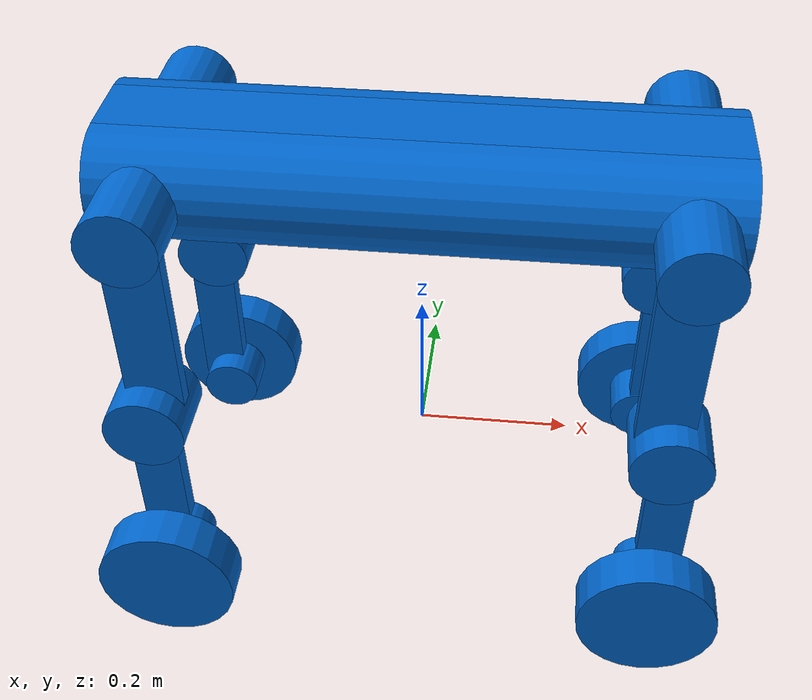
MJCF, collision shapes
<mujoco model="M20">

    <option cone="elliptic" impratio="100" />

    <default>
        <default class="robot">
            <default class="motor">
                <joint damping="0.1" armature="0.01" frictionloss="0.2"/>
                <motor/>
            </default>
            <default class="visual">
                <geom material="default_material" contype="0" conaffinity="0" group="2"/>
            </default>
            <default class="collision">
                <geom material="collision_material" condim="3" contype="1" conaffinity="1" solref="0.005 1"
                      friction="1 0.01 0.001" density="0" group="3"/>
            </default>
        </default>
    </default>

    <compiler angle="radian" meshdir="../../../../model/assets/"/>
    <compiler autolimits="true"/>

    <asset>
        <material name="default_material" rgba="0.7 0.7 0.7 1"/>
        <material name="collision_material" rgba="0.0 0.4 0.8 0.2"/>
        <mesh name="base_link" file="base_link.STL"/>
        <mesh name="fl_hipx" file="fl_hipx.STL"/>
        <mesh name="fl_hipy" file="fl_hipy.STL"/>
        <mesh name="fl_knee" file="fl_knee.STL"/>
        <mesh name="fl_wheel" file="fl_wheel.STL"/>
        <mesh name="fr_hipx" file="fr_hipx.STL"/>
        <mesh name="fr_hipy" file="fr_hipy.STL"/>
        <mesh name="fr_knee" file="fr_knee.STL"/>
        <mesh name="fr_wheel" file="fr_wheel.STL"/>
        <mesh name="hl_hipx" file="hl_hipx.STL"/>
        <mesh name="hl_hipy" file="hl_hipy.STL"/>
        <mesh name="hl_knee" file="hl_knee.STL"/>
        <mesh name="hl_wheel" file="hl_wheel.STL"/>
        <mesh name="hr_hipx" file="hr_hipx.STL"/>
        <mesh name="hr_hipy" file="hr_hipy.STL"/>
        <mesh name="hr_knee" file="hr_knee.STL"/>
        <mesh name="hr_wheel" file="hr_wheel.STL"/>
    </asset>

    <worldbody>
        <body name="base_link" pos="0 0 0.4" quat="1 0 0 0" childclass="robot">
            <freejoint name="floating_base"/>
            <inertial pos="0.00355105878308153 0.0016507579200937 -0.00346462146571654"
                      quat="1 0 0 0"
                      mass="15.882" diaginertia="0.087919 0.533522 0.563492"/>

            <site name="imu" pos="0.0632 -0.0268 -0.0435" size="0.005" rgba="1 0 0 1"/>
            <site name="base_site" pos="0 0 0" quat="1 0 0 0"/>

            <!-- CA9B sensor frames. Translations are converted from millimeters to meters. -->
            <site name="front_camera" pos="0.37646 0 0.03738" size="0.005" rgba="0 1 0 1"/>
            <site name="rear_camera" pos="-0.37646 0 0.03738" size="0.005" rgba="0 1 0 1"/>
            <site name="front_lidar" pos="0.32028 0 -0.013" size="0.005" rgba="0 0 1 1"/>
            <site name="rear_lidar" pos="-0.32028 0 -0.013" size="0.005" rgba="0 0 1 1"/>

            <geom type="mesh" mesh="base_link" class="visual"/>
            <geom name="base_link_collision" size="0.375 0.045 0.07" type="box" class="collision"/>
            <geom name="base_link_collision_2" size="0.07 0.375" pos="0 0.045 0" quat="0.707107 0 0.707107 0" type="cylinder" class="collision"/>
            <geom name="base_link_collision_3" size="0.07 0.375" pos="0 -0.045 0" quat="0.707107 0 0.707107 0" type="cylinder" class="collision"/>

            <body name="fl_hipx" pos="0.3141 0.0685 0">
                <inertial pos="-0.0111893 0.00891693 0.000405666" quat="0.581628 0.481707 0.465607 0.461387"
                          mass="0.259964"
                          diaginertia="0.000374402 0.000286289 0.000179309"/>
                <joint name="fl_hipx_joint" pos="0 0 0" axis="-1 0 0" range="-0.436 0.611"
                       actuatorfrcrange="-76.4 76.4"/>
                <geom type="mesh" mesh="fl_hipx" class="visual"/>
                <geom name="fl_hipx_collision" size="0.048 0.07" pos="0 0.055 0" quat="0.707107 0.707107 0 0" type="cylinder" class="collision"/>
                <body name="fl_hipy">
                    <inertial pos="-0.00199375 0.098439 -0.130664" quat="0.6754 -0.0565887 0.0622156 0.73264"
                              mass="2.618"
                              diaginertia="0.0410181 0.0408067 0.00297328"/>
                    <joint name="fl_hipy_joint" pos="0 0 0" axis="0 -1 0" range="-2.286 2.583"
                           actuatorfrcrange="-76.4 76.4"/>
                    <geom type="mesh" mesh="fl_hipy" class="visual"/>
                    <geom name="fl_hipy_collision" size="0.035 0.01 0.125" pos="-0.01 0.11 -0.125" type="box" class="collision"/>
                    <geom name="fl_hipy_collision_2" size="0.05 0.045" pos="0 0.11 -0.25" quat="0.707107 0.707107 0 0" type="cylinder" class="collision"/>
                    <body name="fl_knee" pos="0 0.0984 -0.25">
                        <inertial pos="0.00341917 0.00269124 -0.181265" quat="0.633405 -0.0508555 0.0475887 0.77068"
                                  mass="1.145" diaginertia="0.0121304 0.0117245 0.000948105"/>
                        <joint name="fl_knee_joint" pos="0 0 0" axis="0 -1 0" range="-2.809 2.792"
                               actuatorfrcrange="-76.4 76.4"/>
                        <geom type="mesh" mesh="fl_knee" class="visual"/>
                        <geom name="fl_knee_collision" size="0.03 0.0125 0.125" pos="0.015 -0.015 -0.125" type="box" class="collision"/>
                        <geom name="fl_knee_collision_2" size="0.04 0.05" pos="0 0.02 -0.25" quat="0.707107 0.707107 0 0" type="cylinder" class="collision"/>
                        <body name="fl_wheel" pos="0 0.059676 -0.25">
                            <inertial pos="-3.11398e-07 0.000279002 5.70329e-07" quat="0.707107 0 0 0.707107"
                                      mass="0.638"
                                      diaginertia="0.002853 0.001535 0.001535"/>
                            <joint name="fl_wheel_joint" pos="0 0 0" axis="0 -1 0" actuatorfrcrange="-21.6 21.6"/>
                            <geom type="mesh" mesh="fl_wheel" class="visual"/>
                            <geom name="fl_wheel_collision" size="0.09 0.027" quat="0.707107 0.707107 0 0" type="cylinder" class="collision"/>
                        </body>
                    </body>
                </body>
            </body>
            <body name="fr_hipx" pos="0.3141 -0.0685 0">
                <inertial pos="-0.0110901 -0.00875035 0.000521421" quat="0.461387 0.465607 0.481707 0.581628"
                          mass="0.259964" diaginertia="0.000374402 0.000286289 0.000179309"/>
                <joint name="fr_hipx_joint" pos="0 0 0" axis="-1 0 0" range="-0.611 0.436"
                       actuatorfrcrange="-76.4 76.4"/>
                <geom type="mesh" mesh="fr_hipx" class="visual"/>
                <geom name="fr_hipx_collision" size="0.048 0.07" pos="0 -0.055 0" quat="0.707107 0.707107 0 0" type="cylinder" class="collision"/>
                <body name="fr_hipy">
                    <inertial pos="-0.00229992 -0.0989709 -0.130925" quat="0.6964 0.0586688 -0.0587886 0.712831"
                              mass="2.618" diaginertia="0.0407542 0.040538 0.00301281"/>
                    <joint name="fr_hipy_joint" pos="0 0 0" axis="0 -1 0" range="-2.286 2.583"
                           actuatorfrcrange="-76.4 76.4"/>
                    <geom type="mesh" mesh="fr_hipy" class="visual"/>
                    <geom name="fr_hipy_collision" size="0.035 0.01 0.125" pos="-0.01 -0.11 -0.125" type="box" class="collision"/>
                    <geom name="fr_hipy_collision_2" size="0.05 0.045" pos="0 -0.11 -0.25" quat="0.707107 0.707107 0 0" type="cylinder" class="collision"/>
                    <body name="fr_knee" pos="0 -0.0984 -0.25">
                        <inertial pos="0.00354945 -0.00247884 -0.180089" quat="0.769194 0.0472982 -0.0504711 0.635261"
                                  mass="1.145" diaginertia="0.0122564 0.0118448 0.000951718"/>
                        <joint name="fr_knee_joint" pos="0 0 0" axis="0 -1 0" range="-2.809 2.792"
                               actuatorfrcrange="-76.4 76.4"/>
                        <geom type="mesh" mesh="fr_knee" class="visual"/>
                        <geom name="fr_knee_collision" size="0.03 0.0125 0.125" pos="0.015 0.015 -0.125" type="box" class="collision"/>
                        <geom name="fr_knee_collision_2" size="0.04 0.05" pos="0 -0.02 -0.25" quat="0.707107 0.707107 0 0" type="cylinder" class="collision"/>
                        <body name="fr_wheel" pos="0 -0.059676 -0.25">
                            <inertial pos="-6.47327e-07 -0.000279012 -4.6242e-08" quat="0.707107 0 0 0.707107"
                                      mass="0.638"
                                      diaginertia="0.002853 0.001535 0.001535"/>
                            <joint name="fr_wheel_joint" pos="0 0 0" axis="0 -1 0" actuatorfrcrange="-21.6 21.6"/>
                            <geom type="mesh" mesh="fr_wheel" class="visual"/>
                            <geom name="fr_wheel_collision" size="0.09 0.027" quat="0.707107 0.707107 0 0" type="cylinder" class="collision"/>
                        </body>
                    </body>
                </body>
            </body>
            <body name="hl_hipx" pos="-0.3141 0.0685 0">
                <inertial pos="0.0110901 0.00875014 0.000524884" quat="0.465607 0.461387 0.581628 0.481707"
                          mass="0.259964"
                          diaginertia="0.000374402 0.000286289 0.000179309"/>
                <joint name="hl_hipx_joint" pos="0 0 0" axis="-1 0 0" range="-0.436 0.611"
                       actuatorfrcrange="-76.4 76.4"/>
                <geom type="mesh" mesh="hl_hipx" class="visual"/>
                <geom name="hl_hipx_collision" size="0.048 0.07" pos="0 0.055 0" quat="0.707107 0.707107 0 0" type="cylinder" class="collision"/>
                <body name="hl_hipy">
                    <inertial pos="0.00204343 0.0990227 -0.130697" quat="0.750359 -0.0628584 0.0546506 0.655761"
                              mass="2.618" diaginertia="0.0408376 0.0406211 0.00299727"/>
                    <joint name="hl_hipy_joint" pos="0 0 0" axis="0 -1 0" range="-2.583 2.286"
                           actuatorfrcrange="-76.4 76.4"/>
                    <geom type="mesh" mesh="hl_hipy" class="visual"/>
                    <geom name="hl_hipy_collision" size="0.035 0.01 0.125" pos="0.01 0.11 -0.125" type="box" class="collision"/>
                    <geom name="hl_hipy_collision_2" size="0.05 0.045" pos="0 0.11 -0.25" quat="0.707107 0.707107 0 0" type="cylinder" class="collision"/>
                    <body name="hl_knee" pos="0 0.0984 -0.25">
                        <inertial pos="-0.00354945 0.00247885 -0.180089" quat="0.769194 -0.0472982 0.0504711 0.635261"
                                  mass="1.145" diaginertia="0.0122564 0.0118448 0.000951718"/>
                        <joint name="hl_knee_joint" pos="0 0 0" axis="0 -1 0" range="-2.792 2.809"
                               actuatorfrcrange="-76.4 76.4"/>
                        <geom type="mesh" mesh="hl_knee" class="visual"/>
                        <geom name="hl_knee_collision" size="0.03 0.0125 0.125" pos="-0.015 0.015 -0.125" type="box" class="collision"/>
                        <geom name="hl_knee_collision_2" size="0.04 0.05" pos="0 0.02 -0.25" quat="0.707107 0.707107 0 0" type="cylinder" class="collision"/>
                        <body name="hl_wheel" pos="0 0.059676 -0.25">
                            <inertial pos="-6.07889e-07 0.000279009 2.1049e-07" quat="0.707107 0 0 0.707107"
                                      mass="0.638"
                                      diaginertia="0.002853 0.001535 0.001535"/>
                            <joint name="hl_wheel_joint" pos="0 0 0" axis="0 -1 0" actuatorfrcrange="-21.6 21.6"/>
                            <geom type="mesh" mesh="hl_wheel" class="visual"/>
                            <geom name="hl_wheel_collision" size="0.09 0.027" quat="0.707107 0.707107 0 0" type="cylinder" class="collision"/>
                        </body>
                    </body>
                </body>
            </body>
            <body name="hr_hipx" pos="-0.3141 -0.0685 0">
                <inertial pos="0.0110902 -0.00875012 0.000524937" quat="0.481707 0.581628 0.461387 0.465607"
                          mass="0.259964"
                          diaginertia="0.000374402 0.000286289 0.000179309"/>
                <joint name="hr_hipx_joint" pos="0 0 0" axis="-1 0 0" range="-0.611 0.436"
                       actuatorfrcrange="-76.4 76.4"/>
                <geom type="mesh" mesh="hr_hipx" class="visual"/>
                <geom name="hr_hipx_collision" size="0.048 0.07" pos="0 -0.055 0" quat="0.707107 0.707107 0 0" type="cylinder" class="collision"/>
                <body name="hr_hipy">
                    <inertial pos="0.001992 -0.0983704 -0.130561" quat="0.676694 0.0567616 -0.0621797 0.731435"
                              mass="2.618"
                              diaginertia="0.0410109 0.0408028 0.00297526"/>
                    <joint name="hr_hipy_joint" pos="0 0 0" axis="0 -1 0" range="-2.583 2.286"
                           actuatorfrcrange="-76.4 76.4"/>
                    <geom type="mesh" mesh="hr_hipy" class="visual"/>
                    <geom name="hr_hipy_collision" size="0.035 0.01 0.125" pos="0.01 -0.11 -0.125" type="box" class="collision"/>
                    <geom name="hr_hipy_collision_2" size="0.05 0.045" pos="0 -0.11 -0.25" quat="0.707107 0.707107 0 0" type="cylinder" class="collision"/>
                    <body name="hr_knee" pos="0 -0.0984 -0.25">
                        <inertial pos="-0.00341053 -0.00270202 -0.181287" quat="0.63448 0.050937 -0.0475303 0.769793"
                                  mass="1.145" diaginertia="0.0121352 0.0117289 0.000948904"/>
                        <joint name="hr_knee_joint" pos="0 0 0" axis="0 -1 0" range="-2.792 2.809"
                               actuatorfrcrange="-76.4 76.4"/>
                        <geom type="mesh" mesh="hr_knee" class="visual"/>
                        <geom name="hr_knee_collision" size="0.03 0.0125 0.125" pos="-0.015 0.015 -0.125" type="box" class="collision"/>
                        <geom name="hr_knee_collision_2" size="0.04 0.05" pos="0 -0.02 -0.25" quat="0.707107 0.707107 0 0" type="cylinder" class="collision"/>
                        <body name="hr_wheel" pos="0 -0.059676 -0.25">
                            <inertial pos="6.09746e-07 -0.000279009 2.01314e-07" quat="0.707107 0 0 0.707107"
                                      mass="0.638"
                                      diaginertia="0.002853 0.001535 0.001535"/>
                            <joint name="hr_wheel_joint" pos="0 0 0" axis="0 -1 0" actuatorfrcrange="-21.6 21.6"/>
                            <geom type="mesh" mesh="hr_wheel" class="visual"/>
                            <geom name="hr_wheel_collision" size="0.09 0.027" quat="0.707107 0.707107 0 0" type="cylinder" class="collision"/>
                        </body>
                    </body>
                </body>
            </body>
        </body>
    </worldbody>

    <contact>
        <exclude body1="base_link" body2="fl_hipx"/>
        <exclude body1="fl_hipx" body2="fl_hipy"/>
        <exclude body1="fl_hipy" body2="fl_knee"/>
        <exclude body1="fl_knee" body2="fl_wheel"/>

        <exclude body1="base_link" body2="fr_hipx"/>
        <exclude body1="fr_hipx" body2="fr_hipy"/>
        <exclude body1="fr_hipy" body2="fr_knee"/>
        <exclude body1="fr_knee" body2="fr_wheel"/>

        <exclude body1="base_link" body2="hl_hipx"/>
        <exclude body1="hl_hipx" body2="hl_hipy"/>
        <exclude body1="hl_hipy" body2="hl_knee"/>
        <exclude body1="hl_knee" body2="hl_wheel"/>

        <exclude body1="base_link" body2="hr_hipx"/>
        <exclude body1="hr_hipx" body2="hr_hipy"/>
        <exclude body1="hr_hipy" body2="hr_knee"/>
        <exclude body1="hr_knee" body2="hr_wheel"/>
    </contact>

    <sensor>
        <jointpos name="fl_hipx_pos" joint="fl_hipx_joint" />
        <jointpos name="fl_hipy_pos" joint="fl_hipy_joint" />
        <jointpos name="fl_knee_pos" joint="fl_knee_joint" />
        <jointpos name="fl_wheel_pos" joint="fl_wheel_joint" />
        <jointpos name="fr_hipx_pos" joint="fr_hipx_joint" />
        <jointpos name="fr_hipy_pos" joint="fr_hipy_joint" />
        <jointpos name="fr_knee_pos" joint="fr_knee_joint" />
        <jointpos name="fr_wheel_pos" joint="fr_wheel_joint" />
        <jointpos name="hl_hipx_pos" joint="hl_hipx_joint" />
        <jointpos name="hl_hipy_pos" joint="hl_hipy_joint" />
        <jointpos name="hl_knee_pos" joint="hl_knee_joint" />
        <jointpos name="hl_wheel_pos" joint="hl_wheel_joint" />
        <jointpos name="hr_hipx_pos" joint="hr_hipx_joint" />
        <jointpos name="hr_hipy_pos" joint="hr_hipy_joint" />
        <jointpos name="hr_knee_pos" joint="hr_knee_joint" />
        <jointpos name="hr_wheel_pos" joint="hr_wheel_joint" />

        <jointvel name="fl_hipx_vel" joint="fl_hipx_joint" />
        <jointvel name="fl_hipy_vel" joint="fl_hipy_joint" />
        <jointvel name="fl_knee_vel" joint="fl_knee_joint" />
        <jointvel name="fl_wheel_vel" joint="fl_wheel_joint" noise="0.0"/>
        <jointvel name="fr_hipx_vel" joint="fr_hipx_joint" />
        <jointvel name="fr_hipy_vel" joint="fr_hipy_joint" />
        <jointvel name="fr_knee_vel" joint="fr_knee_joint" />
        <jointvel name="fr_wheel_vel" joint="fr_wheel_joint" noise="0.0"/>
        <jointvel name="hl_hipx_vel" joint="hl_hipx_joint" />
        <jointvel name="hl_hipy_vel" joint="hl_hipy_joint" />
        <jointvel name="hl_knee_vel" joint="hl_knee_joint" />
        <jointvel name="hl_wheel_vel" joint="hl_wheel_joint" noise="0.0"/>
        <jointvel name="hr_hipx_vel" joint="hr_hipx_joint" />
        <jointvel name="hr_hipy_vel" joint="hr_hipy_joint" />
        <jointvel name="hr_knee_vel" joint="hr_knee_joint" />
        <jointvel name="hr_wheel_vel" joint="hr_wheel_joint" noise="0.0"/>

        <jointactuatorfrc name="fl_hipx_torque" joint="fl_hipx_joint" noise="0.01" />
        <jointactuatorfrc name="fl_hipy_torque" joint="fl_hipy_joint" noise="0.01" />
        <jointactuatorfrc name="fl_knee_torque" joint="fl_knee_joint" noise="0.01" />
        <jointactuatorfrc name="fl_wheel_torque" joint="fl_wheel_joint" />
        <jointactuatorfrc name="fr_hipx_torque" joint="fr_hipx_joint" noise="0.01" />
        <jointactuatorfrc name="fr_hipy_torque" joint="fr_hipy_joint" noise="0.01" />
        <jointactuatorfrc name="fr_knee_torque" joint="fr_knee_joint" noise="0.01" />
        <jointactuatorfrc name="fr_wheel_torque" joint="fr_wheel_joint" />
        <jointactuatorfrc name="hl_hipx_torque" joint="hl_hipx_joint" noise="0.01" />
        <jointactuatorfrc name="hl_hipy_torque" joint="hl_hipy_joint" noise="0.01" />
        <jointactuatorfrc name="hl_knee_torque" joint="hl_knee_joint" noise="0.01" />
        <jointactuatorfrc name="hl_wheel_torque" joint="hl_wheel_joint" />
        <jointactuatorfrc name="hr_hipx_torque" joint="hr_hipx_joint" noise="0.01" />
        <jointactuatorfrc name="hr_hipy_torque" joint="hr_hipy_joint" noise="0.01" />
        <jointactuatorfrc name="hr_knee_torque" joint="hr_knee_joint" noise="0.01" />
        <jointactuatorfrc name="hr_wheel_torque" joint="hr_wheel_joint" />

        <framequat name="imu_quat" objtype="site" objname="imu" noise="0.0"/>
        <gyro name="imu_gyro" site="imu" noise="0.0"/>
        <accelerometer name="imu_acc" site="imu" />

        <framepos name="frame_pos" objtype="site" objname="imu" />
        <framelinvel name="frame_vel" objtype="site" objname="imu" />
    </sensor>
</mujoco>
